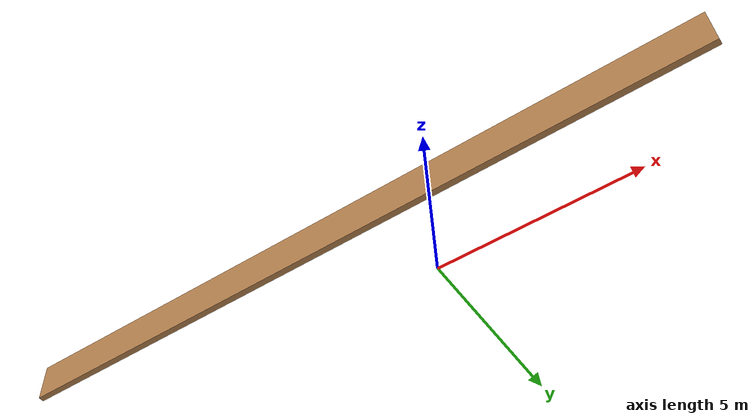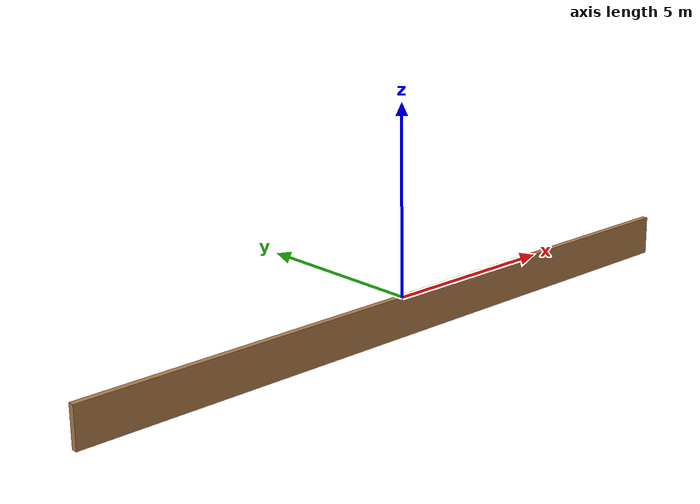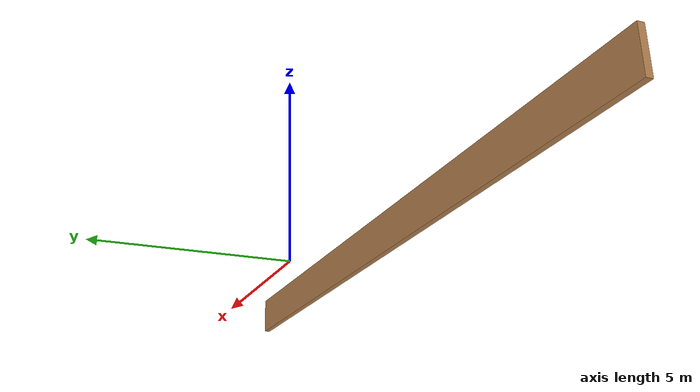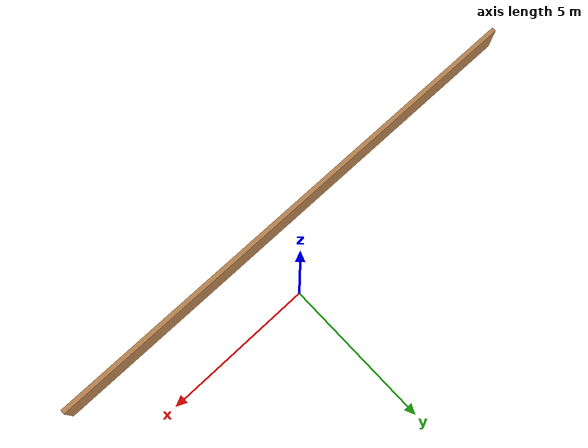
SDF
<?xml version='1.0'?>
<sdf version='1.7'>
  <model name='wall'>
    <pose>-1.625 -1.0025 0 0 -0 0</pose>
    <link name='Wall_0'>
      <collision name='Wall_0_Collision'>
        <geometry>
          <box>
            <size>18 0.15 1</size>
          </box>
        </geometry>
        <pose>0 0 0.5 0 -0 0</pose>
      </collision>
      <visual name='Wall_0_Visual'>
        <pose>0 0 0.5 0 -0 0</pose>
        <geometry>
          <box>
            <size>18 0.15 1</size>
          </box>
        </geometry>
        <material>
          <script>
            <uri>file://media/materials/scripts/gazebo.material</uri>
            <name>Gazebo/Wood</name>
          </script>
          <ambient>0.760784 0.662745 0.627451 1</ambient>
        </material>
        <meta>
          <layer>0</layer>
        </meta>
      </visual>
      <pose>0 -0.9275 0 0 -0 3.14159</pose>
    </link>
    <static>1</static>
  </model>
</sdf>
